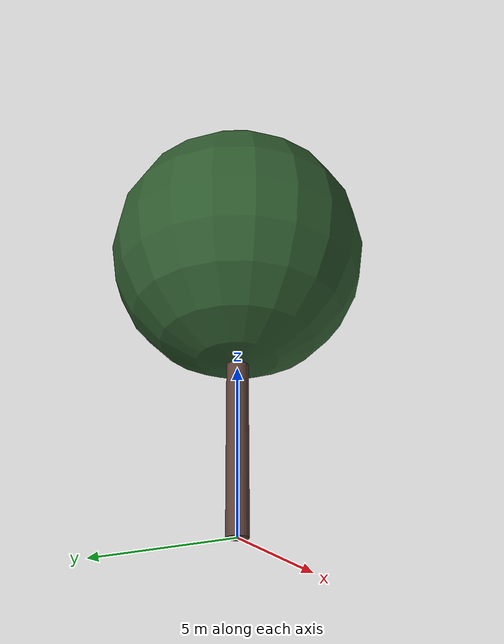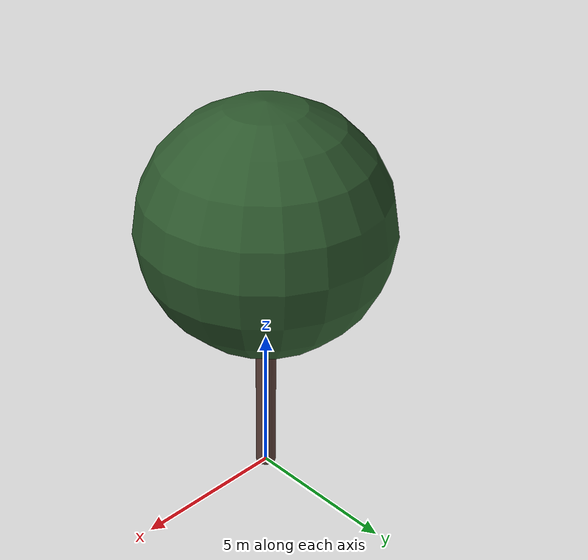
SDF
<?xml version="1.0" ?>
<sdf version="1.10">
  <model name="pin_parasol_08">
    <static>true</static>

    <!-- Tronc -->
    <link name="trunk">
      <pose>0 0 3.9203781491071714 0 0 0</pose>
      <visual name="trunk_visual">
        <geometry>
          <cylinder>
            <radius>0.32651685296262595</radius>
            <length>7.840756298214343</length>
          </cylinder>
        </geometry>
        <material>
          <ambient>0.36 0.25 0.22 1</ambient>
          <diffuse>0.36 0.25 0.22 1</diffuse>
          <specular>0.1 0.1 0.1 1</specular>
        </material>
      </visual>
      <collision name="trunk_collision">
        <geometry>
          <cylinder>
            <radius>0.32651685296262595</radius>
            <length>7.840756298214343</length>
          </cylinder>
        </geometry>
      </collision>
    </link>

    <!-- Feuillage -->
    <link name="crown">
      <pose>0 0 9.03950007837615 0 0 0</pose>
      <visual name="crown_visual">
        <geometry>
          <sphere>
              <radius>3.995812600539357</radius>
            </sphere>
        </geometry>
        <material>
          <ambient>0.18 0.35 0.18 1</ambient>
          <diffuse>0.18 0.35 0.18 1</diffuse>
          <specular>0.1 0.1 0.1 1</specular>
        </material>
      </visual>
      <collision name="crown_collision">
        <geometry>
          <sphere>
            <radius>3.1966500804314855</radius>
          </sphere>
        </geometry>
      </collision>
    </link>

    <!-- Joint tronc-feuillage -->
    <joint name="trunk_crown_joint" type="fixed">
      <parent>trunk</parent>
      <child>crown</child>
    </joint>

  </model>
</sdf>
